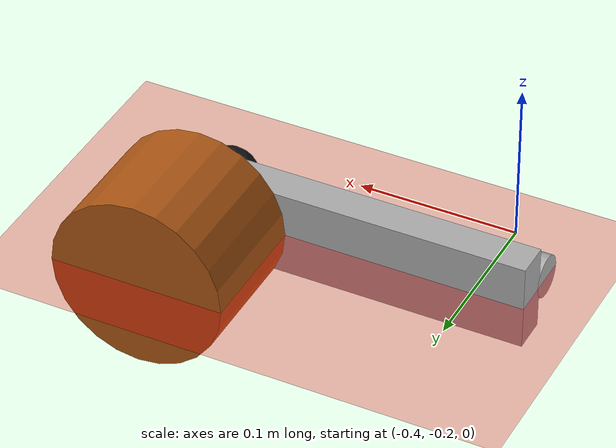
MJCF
<mujoco>
	<compiler angle="radian" autolimits="true"/>
	<visual>
		<headlight ambient="0.5 0.5 0.5" />
	</visual>
	<option timestep="0.001" integrator="RK4" >
		<flag sensornoise="enable" energy="enable" contact="enable" />
	</option>
	<worldbody>
        <light diffuse=".5 .5 .5" pos="0 0 3" dir="0 0 -1"/>
		<geom type="plane" size="2 1 0.1" rgba=".9 0 0 1"/>
		<body name="hip3" pos="-0.2263 -0.07 0">
      <inertial pos="0 0 0" quat="0.5 0.5 -0.5 0.5" mass="0.575" diaginertia="0.000869688 0.000669635 0.000669635"/>
      <joint name="joint_11" pos="0 0 0" axis="1 0 0" limited="true" range="-1.5707 1.5707"/>
      <geom size="0.055 0.04" pos="0 -0.028 0" quat="0.707107 0.707107 0 0" type="cylinder" contype="0" conaffinity="0" group="1" density="0" rgba="0.68 0.34 0.08 1"/>
      <geom size="0.055 0.04" pos="0 -0.028 0" quat="0.707107 0.707107 0 0" type="cylinder" rgba="0.68 0.34 0.08 1"/>
      <body name="upper3" pos="0 -0.10098 0">
        <inertial pos="0 0 0" quat="0.5 0.5 0.5 0.5" mass="0.775" diaginertia="0.001 0.001 5e-05"/>
        <joint name="joint_6" pos="0 0 0" axis="0 -1 0" limited="true" range="-6.28319 6.28319"/>
        <geom size="0.103 0.011 0.0275" pos="-0.103 0.022 0" type="box" contype="0" conaffinity="0" group="1" density="0" rgba="0.68 0.68 0.68 1"/>
        <geom size="0.103 0.011 0.0275" pos="-0.103 0.022 0" type="box" rgba="0.68 0.68 0.68 1"/>
        <body name="lower3" pos="-0.206 0 0">
          <inertial pos="0.0343333 0 0" quat="0.5 0.5 0.5 0.5" mass="0.09" diaginertia="0.00065545 0.00065545 3e-05"/>
          <joint name="joint_7" pos="0 0 0" axis="0 1 0" limited="true" range="-3 3"/>
          <geom size="0.013 0.103" pos="0.103 0 0" quat="0.707107 0 0.707107 0" type="cylinder" contype="0" conaffinity="0" group="1" density="0" rgba="0.68 0.68 0.68 1"/>
          <geom size="0.013 0.103" pos="0.103 0 0" quat="0.707107 0 0.707107 0" type="cylinder" rgba="0.68 0.68 0.68 1"/>
          <geom size="0.02" pos="0.206 0 0" contype="0" conaffinity="0" group="1" density="0" rgba="0.1 0.1 0.1 1"/>
          <geom size="0.02" pos="0.206 0 0" rgba="0.1 0.1 0.1 1"/>
        </body>
      </body>
    </body>
	</worldbody>

</mujoco>
